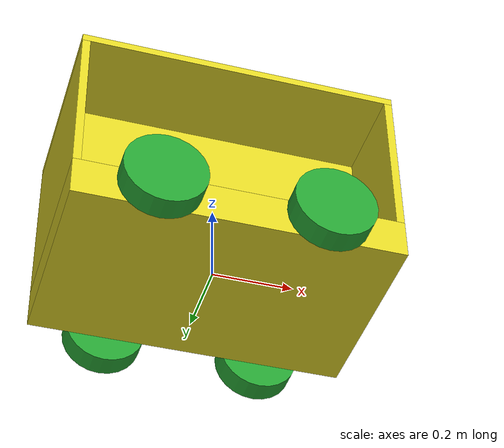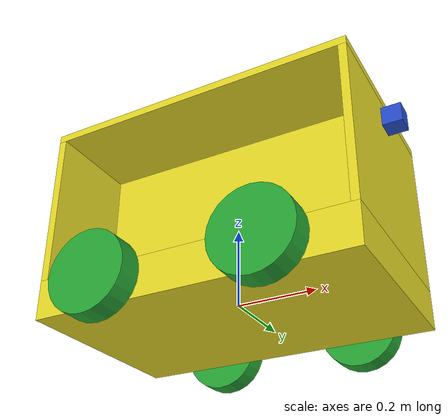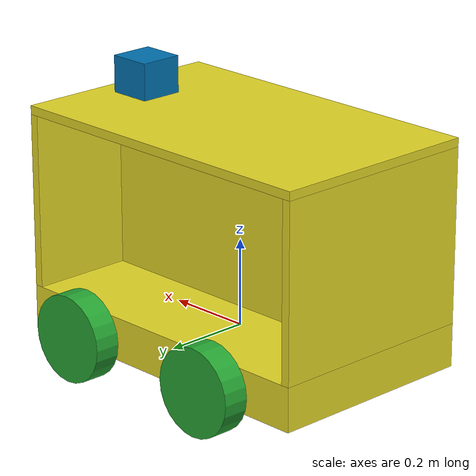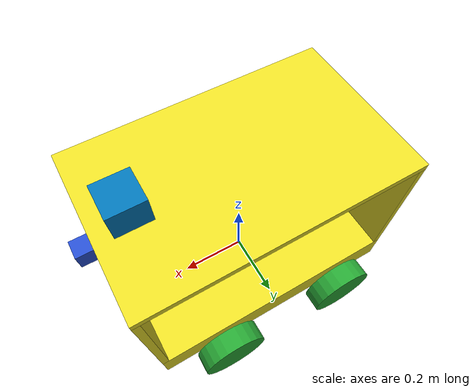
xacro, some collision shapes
<?xml version='1.0'?>

<robot name="my_robot" xmlns:xacro="http://www.ros.org/wiki/xacro">
 <xacro:include filename="$(find my_robot)/urdf/my_robot.gazebo" />
  <link name="robot_footprint"></link>

  <!--Joints -->
  <joint name="robot_footprint_joint" type="fixed">
    <origin xyz="0 0 0" rpy="0 0 0" />
    <parent link="robot_footprint"/>
    <child link="chassis" />
  </joint>

  <joint name="body_part_front_joint" type="fixed">
    <origin xyz="0.39 0 0.25" rpy="0 0 0"/>
    <child link="body_part_front"/>
    <parent link="chassis"/>
    <axis xyz="0 1 0" rpy="0 0 0"/>
  </joint>

  <joint name="body_part_back_joint" type="fixed">
    <origin xyz="-0.39 0 0.25" rpy="0 0 0"/>
    <child link="body_part_back"/>
    <parent link="chassis"/>
    <axis xyz="0 1 0" rpy="0 0 0"/>
  </joint>

  <joint name="body_part_divider_joint" type="fixed">
    <origin xyz="0 0 0.25" rpy="0 0 0"/>
    <child link="body_part_divider"/>
    <parent link="chassis"/>
    <axis xyz="0 1 0" rpy="0 0 0"/>
  </joint>

  <joint name="body_part_roof_joint" type="fixed">
    <origin xyz="0 0 0.46" rpy="0 0 0"/>
    <child link="body_part_roof"/>
    <parent link="chassis"/>
    <axis xyz="0 1 0" rpy="0 0 0"/>
  </joint>

  <joint type="continuous" name="front_left_wheel_joint">
    <origin xyz="0.2 0.3 0" rpy="0 0 0"/>
    <child link="left_front_wheel"/>
    <parent link="chassis"/>
    <axis xyz="0 1 0" rpy="0 0 0"/>
    <limit effort="10000" velocity="1000"/>
    <dynamics damping="1.0" friction="1.0"/>
  </joint>

  <joint type="continuous" name="back_left_wheel_joint">
    <origin xyz="-0.2 0.3 0" rpy="0 0 0"/>
    <child link="left_back_wheel"/>
    <parent link="chassis"/>
    <axis xyz="0 1 0" rpy="0 0 0"/>
    <limit effort="10000" velocity="1000"/>
    <dynamics damping="1.0" friction="1.0"/>
  </joint>

  <joint type="continuous" name="front_right_wheel_joint">
    <origin xyz="0.2 -0.3 0" rpy="0 0 0"/>
    <child link="right_front_wheel"/>
    <parent link="chassis"/>
    <axis xyz="0 1 0" rpy="0 0 0"/>
    <limit effort="10000" velocity="1000"/>
    <dynamics damping="1.0" friction="1.0"/>
  </joint>

  <joint type="continuous" name="back_right_wheel_joint">
    <origin xyz="-0.2 -0.3 0" rpy="0 0 0"/>
    <child link="right_back_wheel"/>
    <parent link="chassis"/>
    <axis xyz="0 1 0" rpy="0 0 0"/>
    <limit effort="10000" velocity="1000"/>
    <dynamics damping="1.0" friction="1.0"/>
  </joint>

  <joint name="camera_joint" type="fixed">
    <origin xyz="0.035 0 0.15" rpy="0 0 0"/>
    <child link="camera"/>
    <parent link="body_part_front"/>
    <axis xyz="0 1 0" rpy="0 0 0"/>
  </joint>

  <joint name="camera_optical_joint" type="fixed">
    <origin xyz="0 0 0" rpy="-1.5707 0 -1.5707"/>
    <parent link="camera"/>
    <child link="camera_link_optical"/>
  </joint>

  <joint name="hokuyo_joint" type="fixed">
    <origin xyz="0.3 0 0.045" rpy="0 0 0"/>
    <child link="hokuyo"/>
    <parent link="body_part_roof"/>
    <axis xyz="0 1 0" rpy="0 0 0"/>
  </joint>

  <!--Links-->
  <link name='chassis'>
    <pose>0 0 0.1 0 0 0</pose>
    <inertial>
      <mass value="10.0"/>
      <origin xyz="0.0 0 0" rpy=" 0 0 0"/>
      <inertia
          ixx="0.1" ixy="0" ixz="0"
          iyy="0.1" iyz="0"
          izz="0.1"
      />
    </inertial>

    <collision name='collision'>
      <origin xyz="0 0 0" rpy=" 0 0 0"/>
      <geometry>
        <box size=".8 .5 .1"/>
      </geometry>
    </collision>

    <visual name='chassis_visual'>
      <origin xyz="0 0 0" rpy=" 0 0 0"/>
      <geometry>
        <box size=".8 .5 .1"/>
      </geometry>
    </visual>
  </link>

  <!--Links-->
  <link name='body_part_front'>
    <pose>0 0 0.1 0 0 0</pose>

    <inertial>
      <mass value="2.5"/>
      <origin xyz="0.0 0 0" rpy=" 0 0 0"/>
      <inertia
          ixx="0.1" ixy="0" ixz="0"
          iyy="0.1" iyz="0"
          izz="0.1"
      />
    </inertial>

    <collision name='body_part_front_collision'>
      <origin xyz="0 0 0" rpy=" 0 0 0"/>
      <geometry>
        <box size=".02 .5 .4"/>
      </geometry>
    </collision>

    <visual name='body_part_front_visual'>
      <origin xyz="0 0 0" rpy=" 0 0 0"/>
      <geometry>
        <box size=".02 .5 .4"/>
      </geometry>
    </visual>
  </link>

  <link name='body_part_back'>
    <pose>0 0 0.1 0 0 0</pose>

    <inertial>
      <mass value="2.5"/>
      <origin xyz="0.0 0 0" rpy=" 0 0 0"/>
      <inertia
          ixx="0.1" ixy="0" ixz="0"
          iyy="0.1" iyz="0"
          izz="0.1"
      />
    </inertial>

    <collision name='body_part_back_collision'>
      <origin xyz="0 0 0" rpy=" 0 0 0"/>
      <geometry>
        <box size=".02 .5 .4"/>
      </geometry>
    </collision>

    <visual name='body_part_back_visual'>
      <origin xyz="0 0 0" rpy=" 0 0 0"/>
      <geometry>
        <box size=".02 .5 .4"/>
      </geometry>
    </visual>
  </link>

  <link name='body_part_divider'>
    <pose>0 0 0.1 0 0 0</pose>

    <inertial>
      <mass value="4.0"/>
      <origin xyz="0.0 0 0" rpy=" 0 0 0"/>
      <inertia
          ixx="0.1" ixy="0" ixz="0"
          iyy="0.1" iyz="0"
          izz="0.1"
      />
    </inertial>

    <collision name='body_part_divider_collision'>
      <origin xyz="0 0 0" rpy=" 0 0 0"/>
      <geometry>
        <box size=".76 .02 .4"/>
      </geometry>
    </collision>

    <visual name='body_part_divider_visual'>
      <origin xyz="0 0 0" rpy=" 0 0 0"/>
      <geometry>
        <box size=".76 .02 .4"/>
      </geometry>
    </visual>

  </link>
    <link name='body_part_roof'>
    <pose>0 0 0.1 0 0 0</pose>

    <inertial>
      <mass value="5.0"/>
      <origin xyz="0.0 0 0" rpy=" 0 0 0"/>
      <inertia
          ixx="0.1" ixy="0" ixz="0"
          iyy="0.1" iyz="0"
          izz="0.1"
      />
    </inertial>

    <collision name='body_part_roof_collision'>
      <origin xyz="0 0 0" rpy=" 0 0 0"/>
      <geometry>
        <box size=".8 .5 .02"/>
      </geometry>
    </collision>

    <visual name='body_part_roof_visual'>
      <origin xyz="0 0 0" rpy=" 0 0 0"/>
      <geometry>
        <box size=".8 .5 .02"/>
      </geometry>
    </visual>
  </link>

  <!--Left Front Wheel-->
  <link name='left_front_wheel'>
    <pose>0 0 0 0 1.5707 1.5707</pose>

    <inertial>
      <mass value="3"/>
      <origin xyz="0 0 0" rpy=" 0 1.5707 1.5707"/>
      <inertia
          ixx="0.1" ixy="0" ixz="0"
          iyy="0.1" iyz="0"
          izz="0.1"
      />
    </inertial>

    <collision name='left_front_wheel_collision'>
      <origin xyz="0 0 0" rpy=" 0 1.5707 1.5707"/>
      <geometry>
        <cylinder radius="0.1" length="0.06"/>
      </geometry>
    </collision>

    <visual name='left_front_wheel_visual'>
      <origin xyz="0 0 0" rpy=" 0 1.5707 1.5707"/>
      <geometry>
        <cylinder radius="0.1" length="0.06"/>
      </geometry>
    </visual>
  </link>

  <!-- Left Rear Wheel-->
    <link name='left_back_wheel'>
    <pose>0 0 0 0 1.5707 1.5707</pose>

    <inertial>
      <mass value="3"/>
      <origin xyz="0 0 0" rpy=" 0 1.5707 1.5707"/>
      <inertia
          ixx="0.1" ixy="0" ixz="0"
          iyy="0.1" iyz="0"
          izz="0.1"
      />
    </inertial>

    <collision name='left_back_wheel_collision'>
      <origin xyz="0 0 0" rpy=" 0 1.5707 1.5707"/>
      <geometry>
        <cylinder radius="0.1" length="0.06"/>
      </geometry>
    </collision>

    <visual name='left_back_wheel_visual'>
      <origin xyz="0 0 0" rpy=" 0 1.5707 1.5707"/>
      <geometry>
        <cylinder radius="0.1" length="0.06"/>
      </geometry>
    </visual>
  </link>

  <!--Right Front Wheel-->
  <link name='right_front_wheel'>
    <pose>0 0 0 0 1.5707 1.5707</pose>

    <inertial>
      <mass value="3"/>
      <origin xyz="0.0 0 0" rpy=" 0 1.5707 1.5707"/>
      <inertia
          ixx="0.1" ixy="0" ixz="0"
          iyy="0.1" iyz="0"
          izz="0.1"
      />
    </inertial>

   <collision name='right_front_wheel_collision'>
      <origin xyz="0 0 0" rpy=" 0 1.5707 1.5707"/>
      <geometry>
        <cylinder radius="0.1" length="0.06"/>
      </geometry>
    </collision>

    <visual name='right_front_wheel_visual'>
      <origin xyz="0 0 0" rpy=" 0 1.5707 1.5707"/>
      <geometry>
        <cylinder radius="0.1" length="0.06"/>
      </geometry>
    </visual>
  </link>

  <!--Right Rear Wheel-->
  <link name='right_back_wheel'>
    <pose>0 0 0 0 1.5707 1.5707</pose>

    <inertial>
      <mass value="3"/>
      <origin xyz="0.0 0 0" rpy=" 0 1.5707 1.5707"/>
      <inertia
          ixx="0.1" ixy="0" ixz="0"
          iyy="0.1" iyz="0"
          izz="0.1"
      />
    </inertial>

   <collision name='right_back_wheel_collision'>
      <origin xyz="0 0 0" rpy=" 0 1.5707 1.5707"/>
      <geometry>
        <cylinder radius="0.1" length="0.06"/>
      </geometry>
    </collision>

    <visual name='right_back_wheel_visual'>
      <origin xyz="0 0 0" rpy=" 0 1.5707 1.5707"/>
      <geometry>
        <cylinder radius="0.1" length="0.06"/>
      </geometry>
    </visual>
  </link>

  <!--Camera-->
  <link name='camera'>
    <pose>0 0 0 0 0 0</pose>

    <inertial>
      <mass value="0.1"/>
      <origin xyz="0 0 0" rpy=" 0 0 0"/>
      <inertia
          ixx="1e-6" ixy="0" ixz="0"
          iyy="1e-6" iyz="0"
          izz="1e-6"
      />
    </inertial>

    <collision name='camera_collision'>
      <origin xyz="0 0 0" rpy=" 0 0 0"/>
      <geometry>
        <box size="0.05 0.05 0.05"/>
      </geometry>
    </collision>

    <visual name='camera_visual'>
      <origin xyz="0 0 0" rpy=" 0 0 0"/>
      <geometry>
        <box size="0.05 0.05 0.05"/>
      </geometry>
    </visual>
  </link>

  <link name="camera_link_optical">
  </link>

  <link name='hokuyo'>
    <pose>0 0 0 0 0 0</pose>

    <inertial>
      <mass value="1e-5"/>
      <origin xyz="0 0 0" rpy=" 0 0 0"/>
      <inertia
          ixx="1e-6" ixy="0" ixz="0"
          iyy="1e-6" iyz="0"
          izz="1e-6"
      />
    </inertial>

    <collision name='hokuyo_collision'>
      <origin xyz="0 0 0" rpy=" 0 0 0"/>
      <geometry>
        <box size="0.1 0.1 0.1"/>
      </geometry>
    </collision>

    <visual name='hokuyo_visual'>
      <origin xyz="0 0 0" rpy=" 0 0 0"/>
      <geometry>
        <mesh filename="package://my_robot/meshes/hokuyo.dae"/>
      </geometry>
    </visual>
  </link>

  <gazebo reference="left_front_wheel">
   <material>Gazebo/Green</material>
  </gazebo>

  <gazebo reference="left_back_wheel">
   <material>Gazebo/Green</material>
  </gazebo>

  <gazebo reference="right_front_wheel">
   <material>Gazebo/Green</material>
  </gazebo>

  <gazebo reference="right_back_wheel">
   <material>Gazebo/Green</material>
  </gazebo>

  <gazebo reference="chassis">
   <material>Gazebo/Yellow</material>
  </gazebo>

  <gazebo reference="body_part_front">
   <material>Gazebo/Yellow</material>
  </gazebo>

  <gazebo reference="body_part_back">
   <material>Gazebo/Yellow</material>
  </gazebo>

  <gazebo reference="body_part_divider">
   <material>Gazebo/Yellow</material>
  </gazebo>

  <gazebo reference="body_part_roof">
   <material>Gazebo/Yellow</material>
  </gazebo>

  <gazebo reference="camera">
   <material>Gazebo/Blue</material>
  </gazebo>

</robot>
